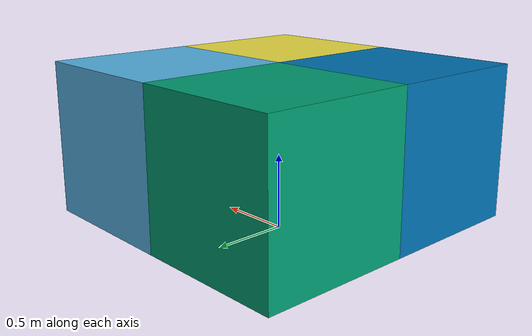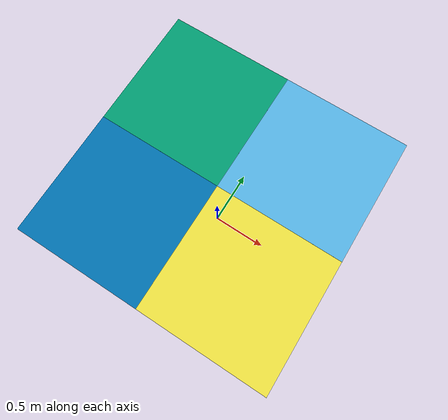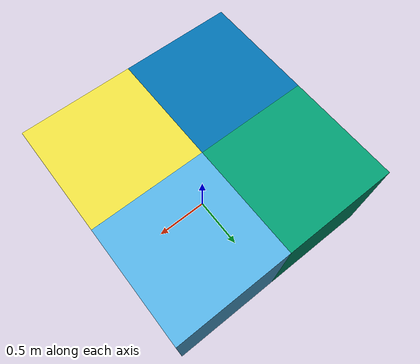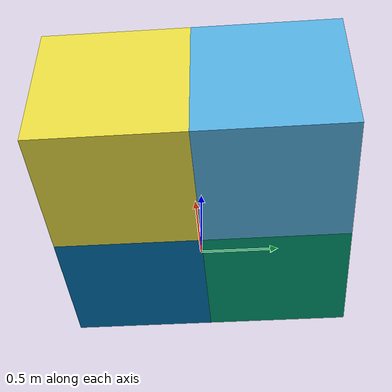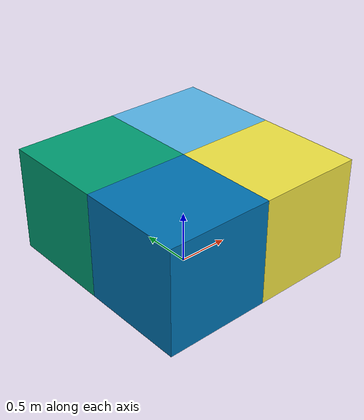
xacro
<?xml version="1.0"?>
<robot name="quarter_test" xmlns:xacro="http://www.ros.org/wiki/xacro">

<link name="world"/>

    <joint name="hako1_joint" type="prismatic">
        <limit lower="0" upper="0" effort="0" velocity="0" />
        <axis xyz="0 0 0"/>
        <parent link="world"/>
        <child link="hako1"/>
        <origin xyz="0.50001 0.50001 0.6"/>
    </joint>

<link name="hako1">
    <visual>
        <origin xyz="0 0 0" rpy="0 0 0"/>
      <geometry>
        <box size="1 1 1"/>
      </geometry>
    </visual>

    <collision name="hako1">
        <origin xyz="0 0 0" rpy="0 0 0"/>
      <geometry>
        <box size="1 1 1"/>
      </geometry>
    </collision>

    <inertial>
        <origin xyz="0 0 0" rpy="0 0 0"/>
        <mass value="1"/>
        <inertia ixx="0.083"  ixy="0"  ixz="0" iyy="0.083" iyz="0" izz="0.083"/>
    </inertial>
</link>

    <joint name="hako2_joint" type="prismatic">
        <limit lower="0" upper="0" effort="0" velocity="0" />
        <axis xyz="0 0 0"/>
        <parent link="world"/>
        <child link="hako2"/>
        <origin xyz="-0.50001 0.50001 0.6"/>
    </joint>

<link name="hako2">
    <visual>
        <origin xyz="0 0 0" rpy="0 0 0"/>
      <geometry>
        <box size="1 1 1"/>
      </geometry>
    </visual>

    <collision name="hako2">
        <origin xyz="0 0 0" rpy="0 0 0"/>
      <geometry>
        <box size="1 1 1"/>
      </geometry>
    </collision>

    <inertial>
        <origin xyz="0 0 0" rpy="0 0 0"/>
        <mass value="1"/>
        <inertia ixx="0.083"  ixy="0"  ixz="0" iyy="0.083" iyz="0" izz="0.083"/>
    </inertial>
</link>

    <joint name="hako3_joint" type="prismatic">
        <limit lower="0" upper="0" effort="0" velocity="0" />
        <axis xyz="0 0 0"/>
        <parent link="world"/>
        <child link="hako3"/>
        <origin xyz="0.50001 -0.50001 0.6"/>
    </joint>

<link name="hako3">
    <visual>
        <origin xyz="0 0 0" rpy="0 0 0"/>
      <geometry>
        <box size="1 1 1"/>
      </geometry>
    </visual>

    <collision name="hako3">
        <origin xyz="0 0 0" rpy="0 0 0"/>
      <geometry>
        <box size="1 1 1"/>
      </geometry>
    </collision>

    <inertial>
        <origin xyz="0 0 0" rpy="0 0 0"/>
        <mass value="1"/>
        <inertia ixx="0.083"  ixy="0"  ixz="0" iyy="0.083" iyz="0" izz="0.083"/>
    </inertial>
</link>

    <joint name="hako4_joint" type="prismatic">
        <limit lower="0" upper="0" effort="0" velocity="0" />
        <axis xyz="0 0 0"/>
        <parent link="world"/>
        <child link="hako4"/>
        <origin xyz="-0.50001 -0.50001 0.6"/>
    </joint>

<link name="hako4">
    <visual>
        <origin xyz="0 0 0" rpy="0 0 0"/>
      <geometry>
        <box size="1 1 1"/>
      </geometry>
    </visual>

    <collision name="hako4">
        <origin xyz="0 0 0" rpy="0 0 0"/>
      <geometry>
        <box size="1 1 1"/>
      </geometry>
    </collision>

    <inertial>
        <origin xyz="0 0 0" rpy="0 0 0"/>
        <mass value="1"/>
        <inertia ixx="0.083"  ixy="0"  ixz="0" iyy="0.083" iyz="0" izz="0.083"/>
    </inertial>
</link>

  <gazebo reference="hako1">
    <mu1 value="200" />
    <mu2 value="100" />
    <selfCollide>true</selfCollide>
    <sensor name="contact_sensor" type="contact">
    <always_on>true</always_on>
    <update_rate>100.0</update_rate>
    <contact>
      <collision>hako1_collision</collision>
    </contact>
    <plugin name="bumper" filename="libgazebo_ros_bumper.so">
      <bumperTopicName>hako1_state</bumperTopicName>
      <frameName>world</frameName>
    </plugin>
   </sensor>
  </gazebo>

  <gazebo reference="hako2">
    <mu1 value="200" />
    <mu2 value="100" />
    <selfCollide>true</selfCollide>
    <sensor name="contact_sensor" type="contact">
    <always_on>true</always_on>
    <update_rate>100.0</update_rate>
    <contact>
      <collision>hako2_collision</collision>
    </contact>
    <plugin name="bumper" filename="libgazebo_ros_bumper.so">
      <bumperTopicName>hako2_state</bumperTopicName>
      <frameName>world</frameName>
    </plugin>
   </sensor>
  </gazebo>

  <gazebo reference="hako3">
    <mu1 value="200" />
    <mu2 value="100" />
    <selfCollide>true</selfCollide>
    <sensor name="contact_sensor" type="contact">
    <always_on>true</always_on>
    <update_rate>100.0</update_rate>
    <contact>
      <collision>hako3_collision</collision>
    </contact>
    <plugin name="bumper" filename="libgazebo_ros_bumper.so">
      <bumperTopicName>hako3_state</bumperTopicName>
      <frameName>world</frameName>
    </plugin>
   </sensor>
  </gazebo>

  <gazebo reference="hako4">
    <mu1 value="200" />
    <mu2 value="100" />
    <selfCollide>true</selfCollide>
    <sensor name="contact_sensor" type="contact">
    <always_on>true</always_on>
    <update_rate>100.0</update_rate>
    <contact>
      <collision>hako4_collision</collision>
    </contact>
    <plugin name="bumper" filename="libgazebo_ros_bumper.so">
      <bumperTopicName>hako4_state</bumperTopicName>
      <frameName>world</frameName>
    </plugin>
   </sensor>
  </gazebo>

</robot>
